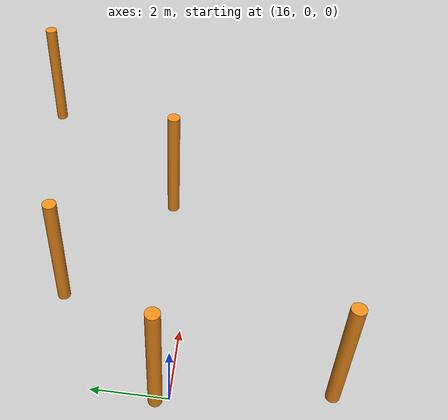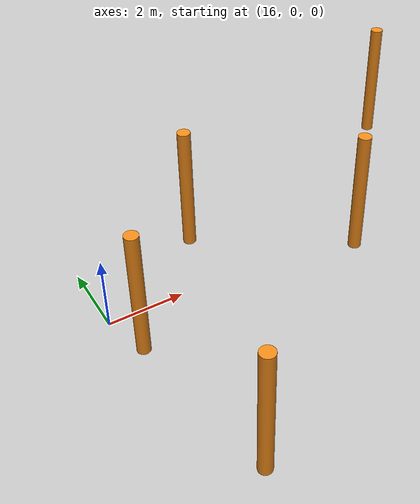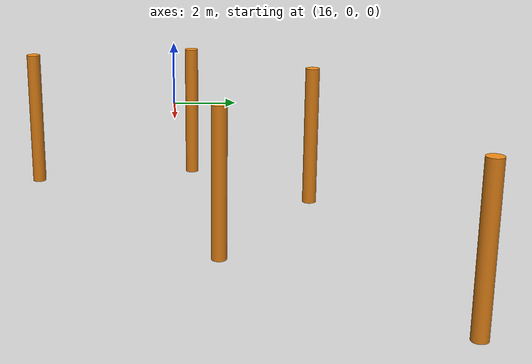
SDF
<sdf version="1.6">
 <model name="Skog">
  <link name="link_1_clone_24">
   <inertial>
    <mass>1</mass>
    <inertia><ixx>0.145833</ixx><ixy>0</ixy><ixz>0</ixz><iyy>0.145833</iyy><iyz>0</iyz><izz>0.125</izz></inertia>
   </inertial>
   <pose>29.1406 6.22755 0 0 -0 0</pose>
   <visual name="visual">
    <geometry><cylinder><radius>0.2</radius><length>4</length></cylinder></geometry>
    <material>
     <lighting>1</lighting>
     <script><uri>file://media/materials/scripts/gazebo.material</uri><name>Gazebo/Orange</name></script>
     <shader type="vertex"><normal_map>__default__</normal_map></shader>
     <ambient>0.3 0.3 0.3 1</ambient>
     <diffuse>0.7 0.7 0.7 1</diffuse>
     <specular>0.01 0.01 0.01 1</specular>
     <emissive>0 0 0 1</emissive>
    </material>
   </visual>
   <collision name="collision">
    <geometry><cylinder><radius>0.2</radius><length>4</length></cylinder></geometry>
    <surface>
     <friction>
      <ode><mu>1</mu><mu2>1</mu2><fdir1>0 0 0</fdir1><slip1>0</slip1><slip2>0</slip2></ode>
      <torsional>
       <coefficient>1</coefficient>
       <patch_radius>0</patch_radius>
       <surface_radius>0</surface_radius>
       <use_patch_radius>1</use_patch_radius>
       <ode><slip>0</slip></ode>
      </torsional>
     </friction>
     <bounce><restitution_coefficient>0</restitution_coefficient><threshold>1e+06</threshold></bounce>
     <contact>
      <collide_without_contact>0</collide_without_contact>
      <collide_without_contact_bitmask>1</collide_without_contact_bitmask>
      <collide_bitmask>1</collide_bitmask>
      <ode>
       <soft_cfm>0</soft_cfm>
       <soft_erp>0.2</soft_erp>
       <kp>1e+13</kp>
       <kd>1</kd>
       <max_vel>0.01</max_vel>
       <min_depth>0</min_depth>
      </ode>
      <bullet>
       <split_impulse>1</split_impulse>
       <split_impulse_penetration_threshold>-0.01</split_impulse_penetration_threshold>
       <soft_cfm>0</soft_cfm>
       <soft_erp>0.2</soft_erp>
       <kp>1e+13</kp>
       <kd>1</kd>
      </bullet>
     </contact>
    </surface>
   </collision>
  </link>
  <link name="link_1_clone_5">
   <inertial>
    <mass>1</mass>
    <inertia><ixx>0.145833</ixx><ixy>0</ixy><ixz>0</ixz><iyy>0.145833</iyy><iyz>0</iyz><izz>0.125</izz></inertia>
   </inertial>
   <pose>24.5312 1.03587 0 0 -0 0</pose>
   <visual name="visual">
    <geometry><cylinder><radius>0.2</radius><length>4</length></cylinder></geometry>
    <material>
     <lighting>1</lighting>
     <script><uri>file://media/materials/scripts/gazebo.material</uri><name>Gazebo/Orange</name></script>
     <shader type="vertex"><normal_map>__default__</normal_map></shader>
     <ambient>0.3 0.3 0.3 1</ambient>
     <diffuse>0.7 0.7 0.7 1</diffuse>
     <specular>0.01 0.01 0.01 1</specular>
     <emissive>0 0 0 1</emissive>
    </material>
   </visual>
   <collision name="collision">
    <geometry><cylinder><radius>0.2</radius><length>4</length></cylinder></geometry>
    <surface>
     <friction>
      <ode><mu>1</mu><mu2>1</mu2><fdir1>0 0 0</fdir1><slip1>0</slip1><slip2>0</slip2></ode>
      <torsional>
       <coefficient>1</coefficient>
       <patch_radius>0</patch_radius>
       <surface_radius>0</surface_radius>
       <use_patch_radius>1</use_patch_radius>
       <ode><slip>0</slip></ode>
      </torsional>
     </friction>
     <bounce><restitution_coefficient>0</restitution_coefficient><threshold>1e+06</threshold></bounce>
     <contact>
      <collide_without_contact>0</collide_without_contact>
      <collide_without_contact_bitmask>1</collide_without_contact_bitmask>
      <collide_bitmask>1</collide_bitmask>
      <ode>
       <soft_cfm>0</soft_cfm>
       <soft_erp>0.2</soft_erp>
       <kp>1e+13</kp>
       <kd>1</kd>
       <max_vel>0.01</max_vel>
       <min_depth>0</min_depth>
      </ode>
      <bullet>
       <split_impulse>1</split_impulse>
       <split_impulse_penetration_threshold>-0.01</split_impulse_penetration_threshold>
       <soft_cfm>0</soft_cfm>
       <soft_erp>0.2</soft_erp>
       <kp>1e+13</kp>
       <kd>1</kd>
      </bullet>
     </contact>
    </surface>
   </collision>
  </link>
  <link name="link_1_clone_53">
   <inertial>
    <mass>1</mass>
    <inertia><ixx>0.145833</ixx><ixy>0</ixy><ixz>0</ixz><iyy>0.145833</iyy><iyz>0</iyz><izz>0.125</izz></inertia>
   </inertial>
   <pose>17.812 -4.29508 0 0 -0 0</pose>
   <visual name="visual">
    <geometry><cylinder><radius>0.2</radius><length>4</length></cylinder></geometry>
    <material>
     <lighting>1</lighting>
     <script><uri>file://media/materials/scripts/gazebo.material</uri><name>Gazebo/Orange</name></script>
     <shader type="vertex"><normal_map>__default__</normal_map></shader>
     <ambient>0.3 0.3 0.3 1</ambient>
     <diffuse>0.7 0.7 0.7 1</diffuse>
     <specular>0.01 0.01 0.01 1</specular>
     <emissive>0 0 0 1</emissive>
    </material>
   </visual>
   <collision name="collision">
    <geometry><cylinder><radius>0.2</radius><length>4</length></cylinder></geometry>
    <surface>
     <friction>
      <ode><mu>1</mu><mu2>1</mu2><fdir1>0 0 0</fdir1><slip1>0</slip1><slip2>0</slip2></ode>
      <torsional>
       <coefficient>1</coefficient>
       <patch_radius>0</patch_radius>
       <surface_radius>0</surface_radius>
       <use_patch_radius>1</use_patch_radius>
       <ode><slip>0</slip></ode>
      </torsional>
     </friction>
     <bounce><restitution_coefficient>0</restitution_coefficient><threshold>1e+06</threshold></bounce>
     <contact>
      <collide_without_contact>0</collide_without_contact>
      <collide_without_contact_bitmask>1</collide_without_contact_bitmask>
      <collide_bitmask>1</collide_bitmask>
      <ode>
       <soft_cfm>0</soft_cfm>
       <soft_erp>0.2</soft_erp>
       <kp>1e+13</kp>
       <kd>1</kd>
       <max_vel>0.01</max_vel>
       <min_depth>0</min_depth>
      </ode>
      <bullet>
       <split_impulse>1</split_impulse>
       <split_impulse_penetration_threshold>-0.01</split_impulse_penetration_threshold>
       <soft_cfm>0</soft_cfm>
       <soft_erp>0.2</soft_erp>
       <kp>1e+13</kp>
       <kd>1</kd>
      </bullet>
     </contact>
    </surface>
   </collision>
  </link>
  <link name="link_1_clone_65">
   <inertial>
    <mass>1</mass>
    <inertia><ixx>0.145833</ixx><ixy>0</ixy><ixz>0</ixz><iyy>0.145833</iyy><iyz>0</iyz><izz>0.125</izz></inertia>
   </inertial>
   <pose>20.2566 3.91937 0 0 -0 0</pose>
   <visual name="visual">
    <geometry><cylinder><radius>0.2</radius><length>4</length></cylinder></geometry>
    <material>
     <lighting>1</lighting>
     <script><uri>file://media/materials/scripts/gazebo.material</uri><name>Gazebo/Orange</name></script>
     <shader type="vertex"><normal_map>__default__</normal_map></shader>
     <ambient>0.3 0.3 0.3 1</ambient>
     <diffuse>0.7 0.7 0.7 1</diffuse>
     <specular>0.01 0.01 0.01 1</specular>
     <emissive>0 0 0 1</emissive>
    </material>
   </visual>
   <collision name="collision">
    <geometry><cylinder><radius>0.2</radius><length>4</length></cylinder></geometry>
    <surface>
     <friction>
      <ode><mu>1</mu><mu2>1</mu2><fdir1>0 0 0</fdir1><slip1>0</slip1><slip2>0</slip2></ode>
      <torsional>
       <coefficient>1</coefficient>
       <patch_radius>0</patch_radius>
       <surface_radius>0</surface_radius>
       <use_patch_radius>1</use_patch_radius>
       <ode><slip>0</slip></ode>
      </torsional>
     </friction>
     <bounce><restitution_coefficient>0</restitution_coefficient><threshold>1e+06</threshold></bounce>
     <contact>
      <collide_without_contact>0</collide_without_contact>
      <collide_without_contact_bitmask>1</collide_without_contact_bitmask>
      <collide_bitmask>1</collide_bitmask>
      <ode>
       <soft_cfm>0</soft_cfm>
       <soft_erp>0.2</soft_erp>
       <kp>1e+13</kp>
       <kd>1</kd>
       <max_vel>0.01</max_vel>
       <min_depth>0</min_depth>
      </ode>
      <bullet>
       <split_impulse>1</split_impulse>
       <split_impulse_penetration_threshold>-0.01</split_impulse_penetration_threshold>
       <soft_cfm>0</soft_cfm>
       <soft_erp>0.2</soft_erp>
       <kp>1e+13</kp>
       <kd>1</kd>
      </bullet>
     </contact>
    </surface>
   </collision>
  </link>
  <link name="link_1_clone_72">
   <inertial>
    <mass>1</mass>
    <inertia><ixx>0.145833</ixx><ixy>0</ixy><ixz>0</ixz><iyy>0.145833</iyy><iyz>0</iyz><izz>0.125</izz></inertia>
   </inertial>
   <pose>17.0305 0.547083 0 0 -0 0</pose>
   <visual name="visual">
    <geometry><cylinder><radius>0.2</radius><length>4</length></cylinder></geometry>
    <material>
     <lighting>1</lighting>
     <script><uri>file://media/materials/scripts/gazebo.material</uri><name>Gazebo/Orange</name></script>
     <shader type="vertex"><normal_map>__default__</normal_map></shader>
     <ambient>0.3 0.3 0.3 1</ambient>
     <diffuse>0.7 0.7 0.7 1</diffuse>
     <specular>0.01 0.01 0.01 1</specular>
     <emissive>0 0 0 1</emissive>
    </material>
   </visual>
   <collision name="collision">
    <geometry><cylinder><radius>0.2</radius><length>4</length></cylinder></geometry>
    <surface>
     <friction>
      <ode><mu>1</mu><mu2>1</mu2><fdir1>0 0 0</fdir1><slip1>0</slip1><slip2>0</slip2></ode>
      <torsional>
       <coefficient>1</coefficient>
       <patch_radius>0</patch_radius>
       <surface_radius>0</surface_radius>
       <use_patch_radius>1</use_patch_radius>
       <ode><slip>0</slip></ode>
      </torsional>
     </friction>
     <bounce><restitution_coefficient>0</restitution_coefficient><threshold>1e+06</threshold></bounce>
     <contact>
      <collide_without_contact>0</collide_without_contact>
      <collide_without_contact_bitmask>1</collide_without_contact_bitmask>
      <collide_bitmask>1</collide_bitmask>
      <ode>
       <soft_cfm>0</soft_cfm>
       <soft_erp>0.2</soft_erp>
       <kp>1e+13</kp>
       <kd>1</kd>
       <max_vel>0.01</max_vel>
       <min_depth>0</min_depth>
      </ode>
      <bullet>
       <split_impulse>1</split_impulse>
       <split_impulse_penetration_threshold>-0.01</split_impulse_penetration_threshold>
       <soft_cfm>0</soft_cfm>
       <soft_erp>0.2</soft_erp>
       <kp>1e+13</kp>
       <kd>1</kd>
      </bullet>
     </contact>
    </surface>
   </collision>
  </link>
  <static>0</static>
 </model>
</sdf>
